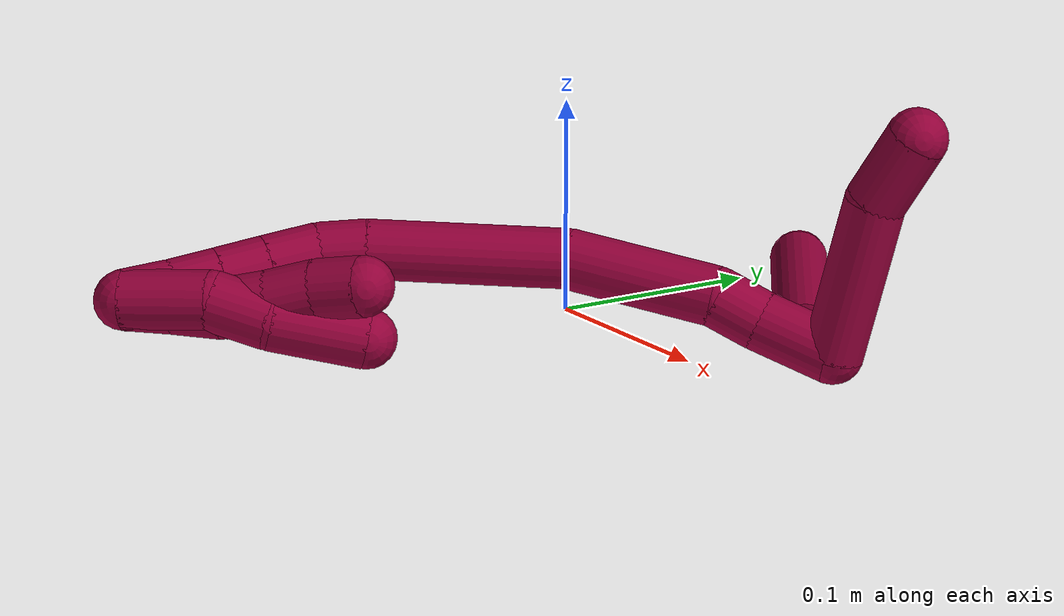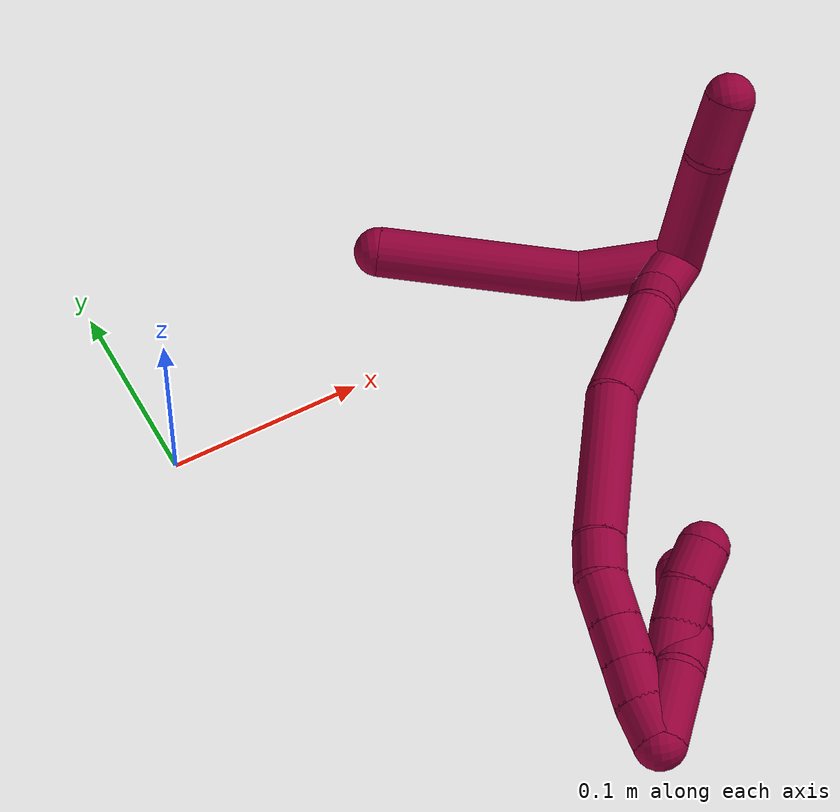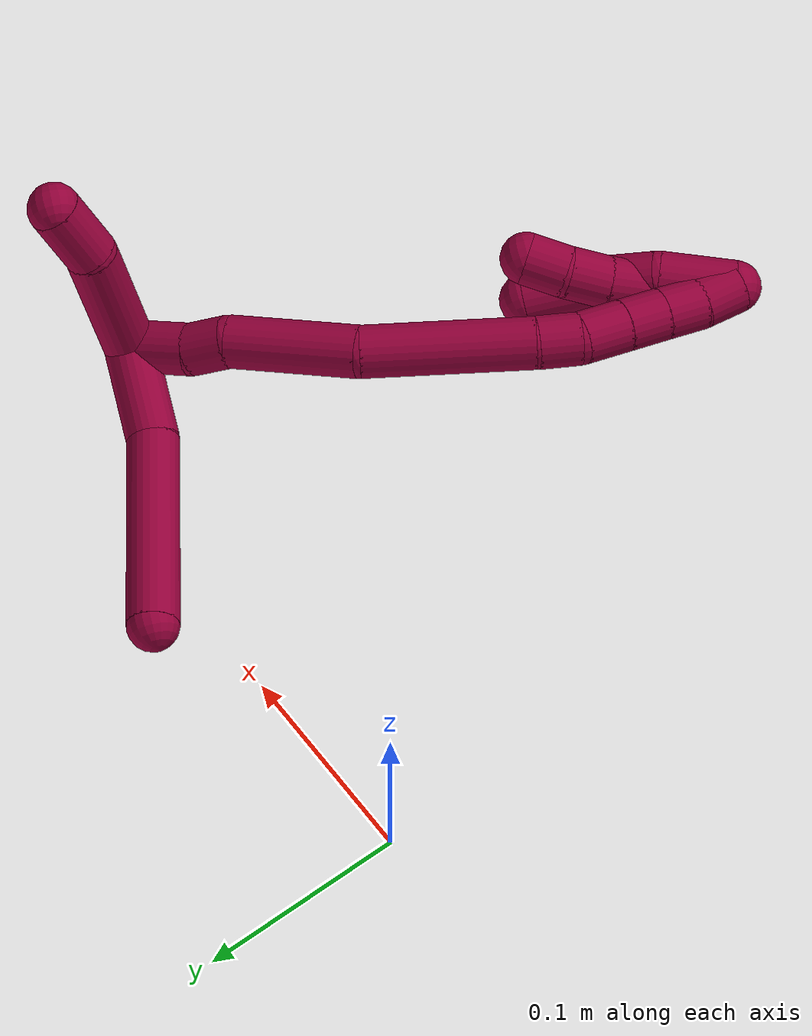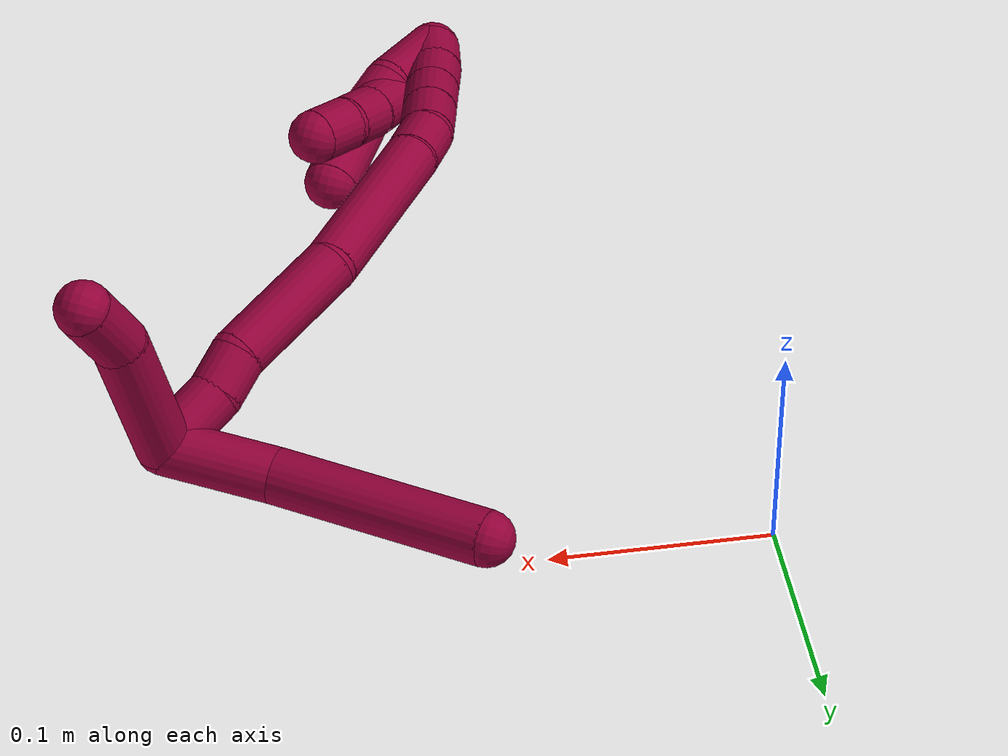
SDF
<sdf version="1.7">
 <world name="default">
  <model name="8">
   <static>0</static>
   <link name="8">
    <collision name="collision-cylinder-e_1_2_8">
     <pose>0.000623 -0.00042 0.024842 0.016908 0.025072 0.000212</pose>
     <geometry><cylinder><radius>0.0125</radius><length>0.049707</length></cylinder></geometry>
     <surface>
      <friction><ode><mu>1.16</mu><mu2>1.16</mu2><slip1>0</slip1><slip2>0</slip2></ode></friction>
      <contact><ode><kp>1e+06</kp><kd>1</kd><max_vel>0</max_vel><min_depth>0.001</min_depth></ode></contact>
     </surface>
    </collision>
    <visual name="visual-cylinder-e_1_2_8">
     <pose>0.000623 -0.00042 0.024842 0.016908 0.025072 0.000212</pose>
     <geometry><cylinder><radius>0.0125</radius><length>0.049707</length></cylinder></geometry>
     <material><ambient>0.584314 0 0.227451 1</ambient></material>
    </visual>
    <collision name="collision-cylinder-e_2_8_6">
     <pose>0.011284 0.008358 0.097947 -0.188324 0.201542 -0.019098</pose>
     <geometry><cylinder><radius>0.0125</radius><length>0.100293</length></cylinder></geometry>
     <surface>
      <friction><ode><mu>1.16</mu><mu2>1.16</mu2><slip1>0</slip1><slip2>0</slip2></ode></friction>
      <contact><ode><kp>1e+06</kp><kd>1</kd><max_vel>0</max_vel><min_depth>0.001</min_depth></ode></contact>
     </surface>
    </collision>
    <visual name="visual-cylinder-e_2_8_6">
     <pose>0.011284 0.008358 0.097947 -0.188324 0.201542 -0.019098</pose>
     <geometry><cylinder><radius>0.0125</radius><length>0.100293</length></cylinder></geometry>
     <material><ambient>0.584314 0 0.227451 1</ambient></material>
    </visual>
    <collision name="collision-cylinder-e_1_2_9">
     <pose>0.031946 0.004098 -0.010962 -2.78384 1.21964 -2.63511</pose>
     <geometry><cylinder><radius>0.0125</radius><length>0.068043</length></cylinder></geometry>
     <surface>
      <friction><ode><mu>1.16</mu><mu2>1.16</mu2><slip1>0</slip1><slip2>0</slip2></ode></friction>
      <contact><ode><kp>1e+06</kp><kd>1</kd><max_vel>0</max_vel><min_depth>0.001</min_depth></ode></contact>
     </surface>
    </collision>
    <visual name="visual-cylinder-e_1_2_9">
     <pose>0.031946 0.004098 -0.010962 -2.78384 1.21964 -2.63511</pose>
     <geometry><cylinder><radius>0.0125</radius><length>0.068043</length></cylinder></geometry>
     <material><ambient>0.584314 0 0.227451 1</ambient></material>
    </visual>
    <collision name="collision-cylinder-e_2_9_5">
     <pose>0.077136 0.014045 -0.028682 -2.42822 0.977183 -1.91884</pose>
     <geometry><cylinder><radius>0.0125</radius><length>0.031957</length></cylinder></geometry>
     <surface>
      <friction><ode><mu>1.16</mu><mu2>1.16</mu2><slip1>0</slip1><slip2>0</slip2></ode></friction>
      <contact><ode><kp>1e+06</kp><kd>1</kd><max_vel>0</max_vel><min_depth>0.001</min_depth></ode></contact>
     </surface>
    </collision>
    <visual name="visual-cylinder-e_2_9_5">
     <pose>0.077136 0.014045 -0.028682 -2.42822 0.977183 -1.91884</pose>
     <geometry><cylinder><radius>0.0125</radius><length>0.031957</length></cylinder></geometry>
     <material><ambient>0.584314 0 0.227451 1</ambient></material>
    </visual>
    <collision name="collision-cylinder-e_1_2_10">
     <pose>0.005351 -0.013777 0.006557 1.1266 0.33731 0.214249</pose>
     <geometry><cylinder><radius>0.0125</radius><length>0.032337</length></cylinder></geometry>
     <surface>
      <friction><ode><mu>1.16</mu><mu2>1.16</mu2><slip1>0</slip1><slip2>0</slip2></ode></friction>
      <contact><ode><kp>1e+06</kp><kd>1</kd><max_vel>0</max_vel><min_depth>0.001</min_depth></ode></contact>
     </surface>
    </collision>
    <visual name="visual-cylinder-e_1_2_10">
     <pose>0.005351 -0.013777 0.006557 1.1266 0.33731 0.214249</pose>
     <geometry><cylinder><radius>0.0125</radius><length>0.032337</length></cylinder></geometry>
     <material><ambient>0.584314 0 0.227451 1</ambient></material>
    </visual>
    <collision name="collision-cylinder-e_2_10_11">
     <pose>0.015112 -0.036546 0.015091 1.35434 0.446653 0.361219</pose>
     <geometry><cylinder><radius>0.0125</radius><length>0.020418</length></cylinder></geometry>
     <surface>
      <friction><ode><mu>1.16</mu><mu2>1.16</mu2><slip1>0</slip1><slip2>0</slip2></ode></friction>
      <contact><ode><kp>1e+06</kp><kd>1</kd><max_vel>0</max_vel><min_depth>0.001</min_depth></ode></contact>
     </surface>
    </collision>
    <visual name="visual-cylinder-e_2_10_11">
     <pose>0.015112 -0.036546 0.015091 1.35434 0.446653 0.361219</pose>
     <geometry><cylinder><radius>0.0125</radius><length>0.020418</length></cylinder></geometry>
     <material><ambient>0.584314 0 0.227451 1</ambient></material>
    </visual>
    <collision name="collision-cylinder-e_3_11_12">
     <pose>0.024849 -0.074168 0.028946 1.17752 0.17021 0.113811</pose>
     <geometry><cylinder><radius>0.0125</radius><length>0.0629</length></cylinder></geometry>
     <surface>
      <friction><ode><mu>1.16</mu><mu2>1.16</mu2><slip1>0</slip1><slip2>0</slip2></ode></friction>
      <contact><ode><kp>1e+06</kp><kd>1</kd><max_vel>0</max_vel><min_depth>0.001</min_depth></ode></contact>
     </surface>
    </collision>
    <visual name="visual-cylinder-e_3_11_12">
     <pose>0.024849 -0.074168 0.028946 1.17752 0.17021 0.113811</pose>
     <geometry><cylinder><radius>0.0125</radius><length>0.0629</length></cylinder></geometry>
     <material><ambient>0.584314 0 0.227451 1</ambient></material>
    </visual>
    <collision name="collision-cylinder-e_4_12_13">
     <pose>0.029942 -0.142963 0.048105 1.39148 -0.005723 -0.004778</pose>
     <geometry><cylinder><radius>0.0125</radius><length>0.081642</length></cylinder></geometry>
     <surface>
      <friction><ode><mu>1.16</mu><mu2>1.16</mu2><slip1>0</slip1><slip2>0</slip2></ode></friction>
      <contact><ode><kp>1e+06</kp><kd>1</kd><max_vel>0</max_vel><min_depth>0.001</min_depth></ode></contact>
     </surface>
    </collision>
    <visual name="visual-cylinder-e_4_12_13">
     <pose>0.029942 -0.142963 0.048105 1.39148 -0.005723 -0.004778</pose>
     <geometry><cylinder><radius>0.0125</radius><length>0.081642</length></cylinder></geometry>
     <material><ambient>0.584314 0 0.227451 1</ambient></material>
    </visual>
    <collision name="collision-cylinder-e_5_13_14">
     <pose>0.028573 -0.19312 0.05622 1.48744 -0.112801 -0.103787</pose>
     <geometry><cylinder><radius>0.0125</radius><length>0.02018</length></cylinder></geometry>
     <surface>
      <friction><ode><mu>1.16</mu><mu2>1.16</mu2><slip1>0</slip1><slip2>0</slip2></ode></friction>
      <contact><ode><kp>1e+06</kp><kd>1</kd><max_vel>0</max_vel><min_depth>0.001</min_depth></ode></contact>
     </surface>
    </collision>
    <visual name="visual-cylinder-e_5_13_14">
     <pose>0.028573 -0.19312 0.05622 1.48744 -0.112801 -0.103787</pose>
     <geometry><cylinder><radius>0.0125</radius><length>0.02018</length></cylinder></geometry>
     <material><ambient>0.584314 0 0.227451 1</ambient></material>
    </visual>
    <collision name="collision-cylinder-e_6_14_15">
     <pose>0.024666 -0.213797 0.055152 1.74704 -0.249976 -0.297771</pose>
     <geometry><cylinder><radius>0.0125</radius><length>0.022404</length></cylinder></geometry>
     <surface>
      <friction><ode><mu>1.16</mu><mu2>1.16</mu2><slip1>0</slip1><slip2>0</slip2></ode></friction>
      <contact><ode><kp>1e+06</kp><kd>1</kd><max_vel>0</max_vel><min_depth>0.001</min_depth></ode></contact>
     </surface>
    </collision>
    <visual name="visual-cylinder-e_6_14_15">
     <pose>0.024666 -0.213797 0.055152 1.74704 -0.249976 -0.297771</pose>
     <geometry><cylinder><radius>0.0125</radius><length>0.022404</length></cylinder></geometry>
     <material><ambient>0.584314 0 0.227451 1</ambient></material>
    </visual>
    <collision name="collision-cylinder-e_7_15_16">
     <pose>0.019324 -0.234029 0.051492 1.75287 -0.258914 -0.310173</pose>
     <geometry><cylinder><radius>0.0125</radius><length>0.020083</length></cylinder></geometry>
     <surface>
      <friction><ode><mu>1.16</mu><mu2>1.16</mu2><slip1>0</slip1><slip2>0</slip2></ode></friction>
      <contact><ode><kp>1e+06</kp><kd>1</kd><max_vel>0</max_vel><min_depth>0.001</min_depth></ode></contact>
     </surface>
    </collision>
    <visual name="visual-cylinder-e_7_15_16">
     <pose>0.019324 -0.234029 0.051492 1.75287 -0.258914 -0.310173</pose>
     <geometry><cylinder><radius>0.0125</radius><length>0.020083</length></cylinder></geometry>
     <material><ambient>0.584314 0 0.227451 1</ambient></material>
    </visual>
    <collision name="collision-cylinder-e_8_16_17">
     <pose>0.014202 -0.253117 0.048068 1.74366 -0.257502 -0.305661</pose>
     <geometry><cylinder><radius>0.0125</radius><length>0.020034</length></cylinder></geometry>
     <surface>
      <friction><ode><mu>1.16</mu><mu2>1.16</mu2><slip1>0</slip1><slip2>0</slip2></ode></friction>
      <contact><ode><kp>1e+06</kp><kd>1</kd><max_vel>0</max_vel><min_depth>0.001</min_depth></ode></contact>
     </surface>
    </collision>
    <visual name="visual-cylinder-e_8_16_17">
     <pose>0.014202 -0.253117 0.048068 1.74366 -0.257502 -0.305661</pose>
     <geometry><cylinder><radius>0.0125</radius><length>0.020034</length></cylinder></geometry>
     <material><ambient>0.584314 0 0.227451 1</ambient></material>
    </visual>
    <collision name="collision-cylinder-e_9_17_1">
     <pose>0.009743 -0.272057 0.043559 1.86454 -0.191948 -0.257958</pose>
     <geometry><cylinder><radius>0.0125</radius><length>0.020002</length></cylinder></geometry>
     <surface>
      <friction><ode><mu>1.16</mu><mu2>1.16</mu2><slip1>0</slip1><slip2>0</slip2></ode></friction>
      <contact><ode><kp>1e+06</kp><kd>1</kd><max_vel>0</max_vel><min_depth>0.001</min_depth></ode></contact>
     </surface>
    </collision>
    <visual name="visual-cylinder-e_9_17_1">
     <pose>0.009743 -0.272057 0.043559 1.86454 -0.191948 -0.257958</pose>
     <geometry><cylinder><radius>0.0125</radius><length>0.020002</length></cylinder></geometry>
     <material><ambient>0.584314 0 0.227451 1</ambient></material>
    </visual>
    <collision name="collision-cylinder-e_1_1_18">
     <pose>0.00767 -0.271669 0.038657 -1.77832 -0.016518 0.020358</pose>
     <geometry><cylinder><radius>0.0125</radius><length>0.02</length></cylinder></geometry>
     <surface>
      <friction><ode><mu>1.16</mu><mu2>1.16</mu2><slip1>0</slip1><slip2>0</slip2></ode></friction>
      <contact><ode><kp>1e+06</kp><kd>1</kd><max_vel>0</max_vel><min_depth>0.001</min_depth></ode></contact>
     </surface>
    </collision>
    <visual name="visual-cylinder-e_1_1_18">
     <pose>0.00767 -0.271669 0.038657 -1.77832 -0.016518 0.020358</pose>
     <geometry><cylinder><radius>0.0125</radius><length>0.02</length></cylinder></geometry>
     <material><ambient>0.584314 0 0.227451 1</ambient></material>
    </visual>
    <collision name="collision-cylinder-e_2_18_19">
     <pose>0.007121 -0.252226 0.034038 -1.82975 -0.03842 0.049919</pose>
     <geometry><cylinder><radius>0.0125</radius><length>0.02</length></cylinder></geometry>
     <surface>
      <friction><ode><mu>1.16</mu><mu2>1.16</mu2><slip1>0</slip1><slip2>0</slip2></ode></friction>
      <contact><ode><kp>1e+06</kp><kd>1</kd><max_vel>0</max_vel><min_depth>0.001</min_depth></ode></contact>
     </surface>
    </collision>
    <visual name="visual-cylinder-e_2_18_19">
     <pose>0.007121 -0.252226 0.034038 -1.82975 -0.03842 0.049919</pose>
     <geometry><cylinder><radius>0.0125</radius><length>0.02</length></cylinder></geometry>
     <material><ambient>0.584314 0 0.227451 1</ambient></material>
    </visual>
    <collision name="collision-cylinder-e_3_19_20">
     <pose>0.00905 -0.233232 0.028736 -1.8566 0.233417 -0.310772</pose>
     <geometry><cylinder><radius>0.0125</radius><length>0.02</length></cylinder></geometry>
     <surface>
      <friction><ode><mu>1.16</mu><mu2>1.16</mu2><slip1>0</slip1><slip2>0</slip2></ode></friction>
      <contact><ode><kp>1e+06</kp><kd>1</kd><max_vel>0</max_vel><min_depth>0.001</min_depth></ode></contact>
     </surface>
    </collision>
    <visual name="visual-cylinder-e_3_19_20">
     <pose>0.00905 -0.233232 0.028736 -1.8566 0.233417 -0.310772</pose>
     <geometry><cylinder><radius>0.0125</radius><length>0.02</length></cylinder></geometry>
     <material><ambient>0.584314 0 0.227451 1</ambient></material>
    </visual>
    <collision name="collision-cylinder-e_4_20_21">
     <pose>0.014251 -0.214999 0.022463 -1.94848 0.29297 -0.427876</pose>
     <geometry><cylinder><radius>0.0125</radius><length>0.02</length></cylinder></geometry>
     <surface>
      <friction><ode><mu>1.16</mu><mu2>1.16</mu2><slip1>0</slip1><slip2>0</slip2></ode></friction>
      <contact><ode><kp>1e+06</kp><kd>1</kd><max_vel>0</max_vel><min_depth>0.001</min_depth></ode></contact>
     </surface>
    </collision>
    <visual name="visual-cylinder-e_4_20_21">
     <pose>0.014251 -0.214999 0.022463 -1.94848 0.29297 -0.427876</pose>
     <geometry><cylinder><radius>0.0125</radius><length>0.02</length></cylinder></geometry>
     <material><ambient>0.584314 0 0.227451 1</ambient></material>
    </visual>
    <collision name="collision-cylinder-e_5_21_4">
     <pose>0.01868 -0.197545 0.013987 -2.0949 0.154685 -0.267018</pose>
     <geometry><cylinder><radius>0.0125</radius><length>0.02</length></cylinder></geometry>
     <surface>
      <friction><ode><mu>1.16</mu><mu2>1.16</mu2><slip1>0</slip1><slip2>0</slip2></ode></friction>
      <contact><ode><kp>1e+06</kp><kd>1</kd><max_vel>0</max_vel><min_depth>0.001</min_depth></ode></contact>
     </surface>
    </collision>
    <visual name="visual-cylinder-e_5_21_4">
     <pose>0.01868 -0.197545 0.013987 -2.0949 0.154685 -0.267018</pose>
     <geometry><cylinder><radius>0.0125</radius><length>0.02</length></cylinder></geometry>
     <material><ambient>0.584314 0 0.227451 1</ambient></material>
    </visual>
    <collision name="collision-cylinder-e_1_1_22">
     <pose>0.008995 -0.264482 0.034649 -1.91413 0.064225 -0.091134</pose>
     <geometry><cylinder><radius>0.0125</radius><length>0.036122</length></cylinder></geometry>
     <surface>
      <friction><ode><mu>1.16</mu><mu2>1.16</mu2><slip1>0</slip1><slip2>0</slip2></ode></friction>
      <contact><ode><kp>1e+06</kp><kd>1</kd><max_vel>0</max_vel><min_depth>0.001</min_depth></ode></contact>
     </surface>
    </collision>
    <visual name="visual-cylinder-e_1_1_22">
     <pose>0.008995 -0.264482 0.034649 -1.91413 0.064225 -0.091134</pose>
     <geometry><cylinder><radius>0.0125</radius><length>0.036122</length></cylinder></geometry>
     <material><ambient>0.584314 0 0.227451 1</ambient></material>
    </visual>
    <collision name="collision-cylinder-e_2_22_23">
     <pose>0.007045 -0.235866 0.025583 -1.82287 -0.252993 0.325262</pose>
     <geometry><cylinder><radius>0.0125</radius><length>0.024838</length></cylinder></geometry>
     <surface>
      <friction><ode><mu>1.16</mu><mu2>1.16</mu2><slip1>0</slip1><slip2>0</slip2></ode></friction>
      <contact><ode><kp>1e+06</kp><kd>1</kd><max_vel>0</max_vel><min_depth>0.001</min_depth></ode></contact>
     </surface>
    </collision>
    <visual name="visual-cylinder-e_2_22_23">
     <pose>0.007045 -0.235866 0.025583 -1.82287 -0.252993 0.325262</pose>
     <geometry><cylinder><radius>0.0125</radius><length>0.024838</length></cylinder></geometry>
     <material><ambient>0.584314 0 0.227451 1</ambient></material>
    </visual>
    <collision name="collision-cylinder-e_3_23_3">
     <pose>0.000964 -0.204973 0.021298 -1.63751 -0.152865 0.163374</pose>
     <geometry><cylinder><radius>0.0125</radius><length>0.03904</length></cylinder></geometry>
     <surface>
      <friction><ode><mu>1.16</mu><mu2>1.16</mu2><slip1>0</slip1><slip2>0</slip2></ode></friction>
      <contact><ode><kp>1e+06</kp><kd>1</kd><max_vel>0</max_vel><min_depth>0.001</min_depth></ode></contact>
     </surface>
    </collision>
    <visual name="visual-cylinder-e_3_23_3">
     <pose>0.000964 -0.204973 0.021298 -1.63751 -0.152865 0.163374</pose>
     <geometry><cylinder><radius>0.0125</radius><length>0.03904</length></cylinder></geometry>
     <material><ambient>0.584314 0 0.227451 1</ambient></material>
    </visual>
    <collision name="collision-sphere-3">
     <pose>-0.002008 -0.185723 0.020012 0 -0 0</pose>
     <geometry><sphere><radius>0.0125</radius></sphere></geometry>
     <surface>
      <friction><ode><mu>1.16</mu><mu2>1.16</mu2><slip1>0</slip1><slip2>0</slip2></ode></friction>
      <contact><ode><kp>1e+06</kp><kd>1</kd><max_vel>0</max_vel><min_depth>0.001</min_depth></ode></contact>
     </surface>
    </collision>
    <visual name="visual-sphere-3">
     <pose>-0.002008 -0.185723 0.020012 0 -0 0</pose>
     <geometry><sphere><radius>0.0125</radius></sphere></geometry>
     <material><ambient>0.584314 0 0.227451 1</ambient></material>
    </visual>
    <collision name="collision-sphere-23">
     <pose>0.003937 -0.224222 0.022584 0 -0 0</pose>
     <geometry><sphere><radius>0.0125</radius></sphere></geometry>
     <surface>
      <friction><ode><mu>1.16</mu><mu2>1.16</mu2><slip1>0</slip1><slip2>0</slip2></ode></friction>
      <contact><ode><kp>1e+06</kp><kd>1</kd><max_vel>0</max_vel><min_depth>0.001</min_depth></ode></contact>
     </surface>
    </collision>
    <visual name="visual-sphere-23">
     <pose>0.003937 -0.224222 0.022584 0 -0 0</pose>
     <geometry><sphere><radius>0.0125</radius></sphere></geometry>
     <material><ambient>0.584314 0 0.227451 1</ambient></material>
    </visual>
    <collision name="collision-sphere-22">
     <pose>0.010154 -0.24751 0.028582 0 -0 0</pose>
     <geometry><sphere><radius>0.0125</radius></sphere></geometry>
     <surface>
      <friction><ode><mu>1.16</mu><mu2>1.16</mu2><slip1>0</slip1><slip2>0</slip2></ode></friction>
      <contact><ode><kp>1e+06</kp><kd>1</kd><max_vel>0</max_vel><min_depth>0.001</min_depth></ode></contact>
     </surface>
    </collision>
    <visual name="visual-sphere-22">
     <pose>0.010154 -0.24751 0.028582 0 -0 0</pose>
     <geometry><sphere><radius>0.0125</radius></sphere></geometry>
     <material><ambient>0.584314 0 0.227451 1</ambient></material>
    </visual>
    <collision name="collision-sphere-4">
     <pose>0.02022 -0.188991 0.009043 0 -0 0</pose>
     <geometry><sphere><radius>0.0125</radius></sphere></geometry>
     <surface>
      <friction><ode><mu>1.16</mu><mu2>1.16</mu2><slip1>0</slip1><slip2>0</slip2></ode></friction>
      <contact><ode><kp>1e+06</kp><kd>1</kd><max_vel>0</max_vel><min_depth>0.001</min_depth></ode></contact>
     </surface>
    </collision>
    <visual name="visual-sphere-4">
     <pose>0.02022 -0.188991 0.009043 0 -0 0</pose>
     <geometry><sphere><radius>0.0125</radius></sphere></geometry>
     <material><ambient>0.584314 0 0.227451 1</ambient></material>
    </visual>
    <collision name="collision-sphere-21">
     <pose>0.017139 -0.2061 0.018932 0 -0 0</pose>
     <geometry><sphere><radius>0.0125</radius></sphere></geometry>
     <surface>
      <friction><ode><mu>1.16</mu><mu2>1.16</mu2><slip1>0</slip1><slip2>0</slip2></ode></friction>
      <contact><ode><kp>1e+06</kp><kd>1</kd><max_vel>0</max_vel><min_depth>0.001</min_depth></ode></contact>
     </surface>
    </collision>
    <visual name="visual-sphere-21">
     <pose>0.017139 -0.2061 0.018932 0 -0 0</pose>
     <geometry><sphere><radius>0.0125</radius></sphere></geometry>
     <material><ambient>0.584314 0 0.227451 1</ambient></material>
    </visual>
    <collision name="collision-sphere-20">
     <pose>0.011363 -0.223898 0.025993 0 -0 0</pose>
     <geometry><sphere><radius>0.0125</radius></sphere></geometry>
     <surface>
      <friction><ode><mu>1.16</mu><mu2>1.16</mu2><slip1>0</slip1><slip2>0</slip2></ode></friction>
      <contact><ode><kp>1e+06</kp><kd>1</kd><max_vel>0</max_vel><min_depth>0.001</min_depth></ode></contact>
     </surface>
    </collision>
    <visual name="visual-sphere-20">
     <pose>0.011363 -0.223898 0.025993 0 -0 0</pose>
     <geometry><sphere><radius>0.0125</radius></sphere></geometry>
     <material><ambient>0.584314 0 0.227451 1</ambient></material>
    </visual>
    <collision name="collision-sphere-10">
     <pose>0.010702 -0.027553 0.013113 0 -0 0</pose>
     <geometry><sphere><radius>0.0125</radius></sphere></geometry>
     <surface>
      <friction><ode><mu>1.16</mu><mu2>1.16</mu2><slip1>0</slip1><slip2>0</slip2></ode></friction>
      <contact><ode><kp>1e+06</kp><kd>1</kd><max_vel>0</max_vel><min_depth>0.001</min_depth></ode></contact>
     </surface>
    </collision>
    <visual name="visual-sphere-10">
     <pose>0.010702 -0.027553 0.013113 0 -0 0</pose>
     <geometry><sphere><radius>0.0125</radius></sphere></geometry>
     <material><ambient>0.584314 0 0.227451 1</ambient></material>
    </visual>
    <collision name="collision-sphere-5">
     <pose>0.090381 0.019893 -0.03544 0 -0 0</pose>
     <geometry><sphere><radius>0.0125</radius></sphere></geometry>
     <surface>
      <friction><ode><mu>1.16</mu><mu2>1.16</mu2><slip1>0</slip1><slip2>0</slip2></ode></friction>
      <contact><ode><kp>1e+06</kp><kd>1</kd><max_vel>0</max_vel><min_depth>0.001</min_depth></ode></contact>
     </surface>
    </collision>
    <visual name="visual-sphere-5">
     <pose>0.090381 0.019893 -0.03544 0 -0 0</pose>
     <geometry><sphere><radius>0.0125</radius></sphere></geometry>
     <material><ambient>0.584314 0 0.227451 1</ambient></material>
    </visual>
    <collision name="collision-sphere-6">
     <pose>0.021323 0.017556 0.14621 0 -0 0</pose>
     <geometry><sphere><radius>0.0125</radius></sphere></geometry>
     <surface>
      <friction><ode><mu>1.16</mu><mu2>1.16</mu2><slip1>0</slip1><slip2>0</slip2></ode></friction>
      <contact><ode><kp>1e+06</kp><kd>1</kd><max_vel>0</max_vel><min_depth>0.001</min_depth></ode></contact>
     </surface>
    </collision>
    <visual name="visual-sphere-6">
     <pose>0.021323 0.017556 0.14621 0 -0 0</pose>
     <geometry><sphere><radius>0.0125</radius></sphere></geometry>
     <material><ambient>0.584314 0 0.227451 1</ambient></material>
    </visual>
    <collision name="collision-sphere-9">
     <pose>0.063891 0.008196 -0.021924 0 -0 0</pose>
     <geometry><sphere><radius>0.0125</radius></sphere></geometry>
     <surface>
      <friction><ode><mu>1.16</mu><mu2>1.16</mu2><slip1>0</slip1><slip2>0</slip2></ode></friction>
      <contact><ode><kp>1e+06</kp><kd>1</kd><max_vel>0</max_vel><min_depth>0.001</min_depth></ode></contact>
     </surface>
    </collision>
    <visual name="visual-sphere-9">
     <pose>0.063891 0.008196 -0.021924 0 -0 0</pose>
     <geometry><sphere><radius>0.0125</radius></sphere></geometry>
     <material><ambient>0.584314 0 0.227451 1</ambient></material>
    </visual>
    <collision name="collision-sphere-2">
     <geometry><sphere><radius>0.0125</radius></sphere></geometry>
     <surface>
      <friction><ode><mu>1.16</mu><mu2>1.16</mu2><slip1>0</slip1><slip2>0</slip2></ode></friction>
      <contact><ode><kp>1e+06</kp><kd>1</kd><max_vel>0</max_vel><min_depth>0.001</min_depth></ode></contact>
     </surface>
    </collision>
    <visual name="visual-sphere-2">
     <geometry><sphere><radius>0.0125</radius></sphere></geometry>
     <material><ambient>0.584314 0 0.227451 1</ambient></material>
    </visual>
    <collision name="collision-sphere-19">
     <pose>0.006737 -0.242566 0.031479 0 -0 0</pose>
     <geometry><sphere><radius>0.0125</radius></sphere></geometry>
     <surface>
      <friction><ode><mu>1.16</mu><mu2>1.16</mu2><slip1>0</slip1><slip2>0</slip2></ode></friction>
      <contact><ode><kp>1e+06</kp><kd>1</kd><max_vel>0</max_vel><min_depth>0.001</min_depth></ode></contact>
     </surface>
    </collision>
    <visual name="visual-sphere-19">
     <pose>0.006737 -0.242566 0.031479 0 -0 0</pose>
     <geometry><sphere><radius>0.0125</radius></sphere></geometry>
     <material><ambient>0.584314 0 0.227451 1</ambient></material>
    </visual>
    <collision name="collision-sphere-8">
     <pose>0.001246 -0.00084 0.049684 0 -0 0</pose>
     <geometry><sphere><radius>0.0125</radius></sphere></geometry>
     <surface>
      <friction><ode><mu>1.16</mu><mu2>1.16</mu2><slip1>0</slip1><slip2>0</slip2></ode></friction>
      <contact><ode><kp>1e+06</kp><kd>1</kd><max_vel>0</max_vel><min_depth>0.001</min_depth></ode></contact>
     </surface>
    </collision>
    <visual name="visual-sphere-8">
     <pose>0.001246 -0.00084 0.049684 0 -0 0</pose>
     <geometry><sphere><radius>0.0125</radius></sphere></geometry>
     <material><ambient>0.584314 0 0.227451 1</ambient></material>
    </visual>
    <collision name="collision-sphere-11">
     <pose>0.019522 -0.045539 0.017068 0 -0 0</pose>
     <geometry><sphere><radius>0.0125</radius></sphere></geometry>
     <surface>
      <friction><ode><mu>1.16</mu><mu2>1.16</mu2><slip1>0</slip1><slip2>0</slip2></ode></friction>
      <contact><ode><kp>1e+06</kp><kd>1</kd><max_vel>0</max_vel><min_depth>0.001</min_depth></ode></contact>
     </surface>
    </collision>
    <visual name="visual-sphere-11">
     <pose>0.019522 -0.045539 0.017068 0 -0 0</pose>
     <geometry><sphere><radius>0.0125</radius></sphere></geometry>
     <material><ambient>0.584314 0 0.227451 1</ambient></material>
    </visual>
    <collision name="collision-sphere-12">
     <pose>0.030176 -0.102797 0.040824 0 -0 0</pose>
     <geometry><sphere><radius>0.0125</radius></sphere></geometry>
     <surface>
      <friction><ode><mu>1.16</mu><mu2>1.16</mu2><slip1>0</slip1><slip2>0</slip2></ode></friction>
      <contact><ode><kp>1e+06</kp><kd>1</kd><max_vel>0</max_vel><min_depth>0.001</min_depth></ode></contact>
     </surface>
    </collision>
    <visual name="visual-sphere-12">
     <pose>0.030176 -0.102797 0.040824 0 -0 0</pose>
     <geometry><sphere><radius>0.0125</radius></sphere></geometry>
     <material><ambient>0.584314 0 0.227451 1</ambient></material>
    </visual>
    <collision name="collision-sphere-13">
     <pose>0.029709 -0.183129 0.055386 0 -0 0</pose>
     <geometry><sphere><radius>0.0125</radius></sphere></geometry>
     <surface>
      <friction><ode><mu>1.16</mu><mu2>1.16</mu2><slip1>0</slip1><slip2>0</slip2></ode></friction>
      <contact><ode><kp>1e+06</kp><kd>1</kd><max_vel>0</max_vel><min_depth>0.001</min_depth></ode></contact>
     </surface>
    </collision>
    <visual name="visual-sphere-13">
     <pose>0.029709 -0.183129 0.055386 0 -0 0</pose>
     <geometry><sphere><radius>0.0125</radius></sphere></geometry>
     <material><ambient>0.584314 0 0.227451 1</ambient></material>
    </visual>
    <collision name="collision-sphere-14">
     <pose>0.027437 -0.203111 0.057055 0 -0 0</pose>
     <geometry><sphere><radius>0.0125</radius></sphere></geometry>
     <surface>
      <friction><ode><mu>1.16</mu><mu2>1.16</mu2><slip1>0</slip1><slip2>0</slip2></ode></friction>
      <contact><ode><kp>1e+06</kp><kd>1</kd><max_vel>0</max_vel><min_depth>0.001</min_depth></ode></contact>
     </surface>
    </collision>
    <visual name="visual-sphere-14">
     <pose>0.027437 -0.203111 0.057055 0 -0 0</pose>
     <geometry><sphere><radius>0.0125</radius></sphere></geometry>
     <material><ambient>0.584314 0 0.227451 1</ambient></material>
    </visual>
    <collision name="collision-sphere-15">
     <pose>0.021895 -0.224482 0.053249 0 -0 0</pose>
     <geometry><sphere><radius>0.0125</radius></sphere></geometry>
     <surface>
      <friction><ode><mu>1.16</mu><mu2>1.16</mu2><slip1>0</slip1><slip2>0</slip2></ode></friction>
      <contact><ode><kp>1e+06</kp><kd>1</kd><max_vel>0</max_vel><min_depth>0.001</min_depth></ode></contact>
     </surface>
    </collision>
    <visual name="visual-sphere-15">
     <pose>0.021895 -0.224482 0.053249 0 -0 0</pose>
     <geometry><sphere><radius>0.0125</radius></sphere></geometry>
     <material><ambient>0.584314 0 0.227451 1</ambient></material>
    </visual>
    <collision name="collision-sphere-16">
     <pose>0.016753 -0.243575 0.049734 0 -0 0</pose>
     <geometry><sphere><radius>0.0125</radius></sphere></geometry>
     <surface>
      <friction><ode><mu>1.16</mu><mu2>1.16</mu2><slip1>0</slip1><slip2>0</slip2></ode></friction>
      <contact><ode><kp>1e+06</kp><kd>1</kd><max_vel>0</max_vel><min_depth>0.001</min_depth></ode></contact>
     </surface>
    </collision>
    <visual name="visual-sphere-16">
     <pose>0.016753 -0.243575 0.049734 0 -0 0</pose>
     <geometry><sphere><radius>0.0125</radius></sphere></geometry>
     <material><ambient>0.584314 0 0.227451 1</ambient></material>
    </visual>
    <collision name="collision-sphere-17">
     <pose>0.011651 -0.26266 0.046402 0 -0 0</pose>
     <geometry><sphere><radius>0.0125</radius></sphere></geometry>
     <surface>
      <friction><ode><mu>1.16</mu><mu2>1.16</mu2><slip1>0</slip1><slip2>0</slip2></ode></friction>
      <contact><ode><kp>1e+06</kp><kd>1</kd><max_vel>0</max_vel><min_depth>0.001</min_depth></ode></contact>
     </surface>
    </collision>
    <visual name="visual-sphere-17">
     <pose>0.011651 -0.26266 0.046402 0 -0 0</pose>
     <geometry><sphere><radius>0.0125</radius></sphere></geometry>
     <material><ambient>0.584314 0 0.227451 1</ambient></material>
    </visual>
    <collision name="collision-sphere-1">
     <pose>0.007835 -0.281453 0.040717 0 -0 0</pose>
     <geometry><sphere><radius>0.0125</radius></sphere></geometry>
     <surface>
      <friction><ode><mu>1.16</mu><mu2>1.16</mu2><slip1>0</slip1><slip2>0</slip2></ode></friction>
      <contact><ode><kp>1e+06</kp><kd>1</kd><max_vel>0</max_vel><min_depth>0.001</min_depth></ode></contact>
     </surface>
    </collision>
    <visual name="visual-sphere-1">
     <pose>0.007835 -0.281453 0.040717 0 -0 0</pose>
     <geometry><sphere><radius>0.0125</radius></sphere></geometry>
     <material><ambient>0.584314 0 0.227451 1</ambient></material>
    </visual>
    <collision name="collision-sphere-18">
     <pose>0.007505 -0.261885 0.036597 0 -0 0</pose>
     <geometry><sphere><radius>0.0125</radius></sphere></geometry>
     <surface>
      <friction><ode><mu>1.16</mu><mu2>1.16</mu2><slip1>0</slip1><slip2>0</slip2></ode></friction>
      <contact><ode><kp>1e+06</kp><kd>1</kd><max_vel>0</max_vel><min_depth>0.001</min_depth></ode></contact>
     </surface>
    </collision>
    <visual name="visual-sphere-18">
     <pose>0.007505 -0.261885 0.036597 0 -0 0</pose>
     <geometry><sphere><radius>0.0125</radius></sphere></geometry>
     <material><ambient>0.584314 0 0.227451 1</ambient></material>
    </visual>
    <inertial>
     <pose>0.018614 -0.115588 0.035172 0 -0 0</pose>
     <mass>0.75</mass>
     <inertia><ixx>0.000196</ixx><ixy>0</ixy><ixz>0</ixz><iyy>0.000134</iyy><iyz>0</iyz><izz>-4e-06</izz></inertia>
    </inertial>
   </link>
   <pose>0.260469 -0.041311 0.051566 -2.6884 -1.40889 2.26757</pose>
  </model>
 </world>
</sdf>
